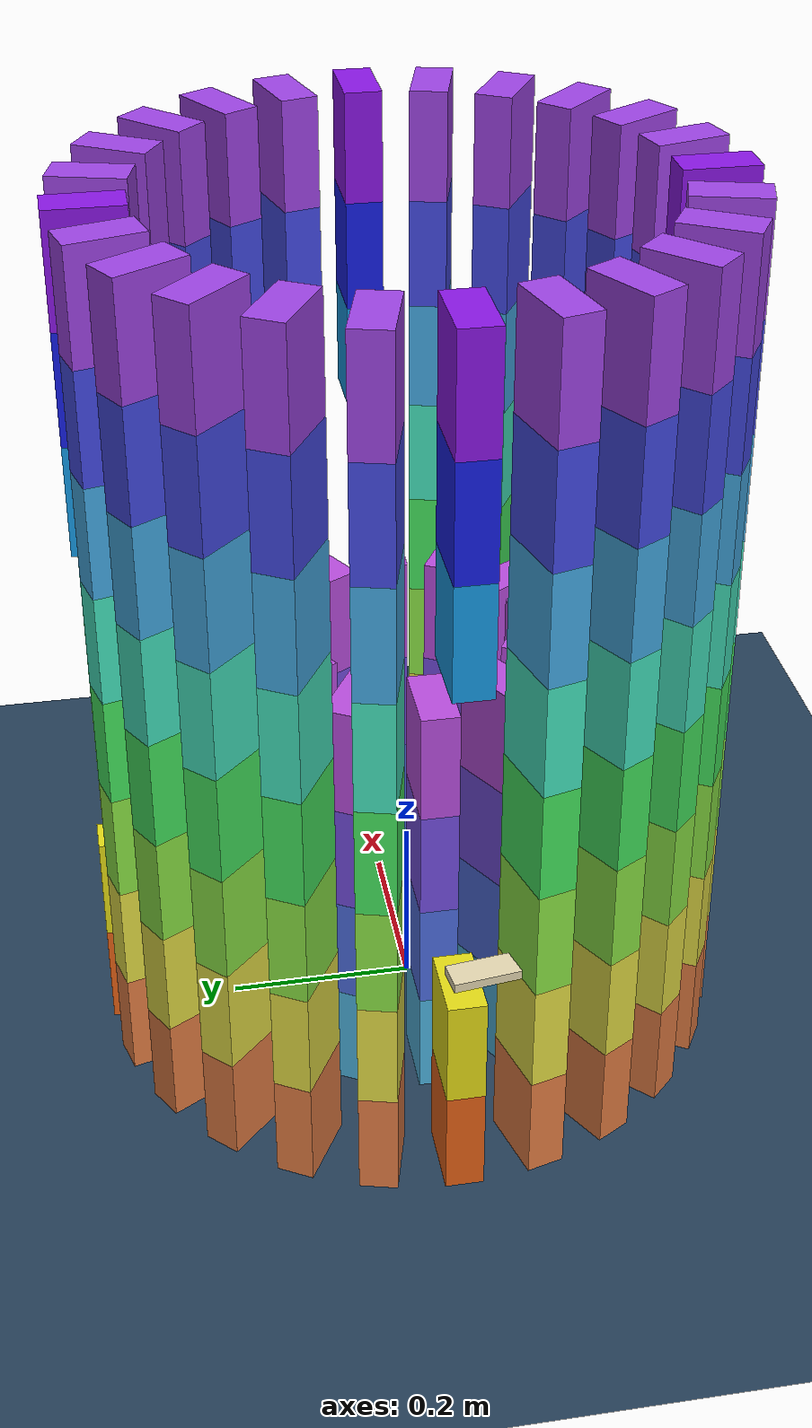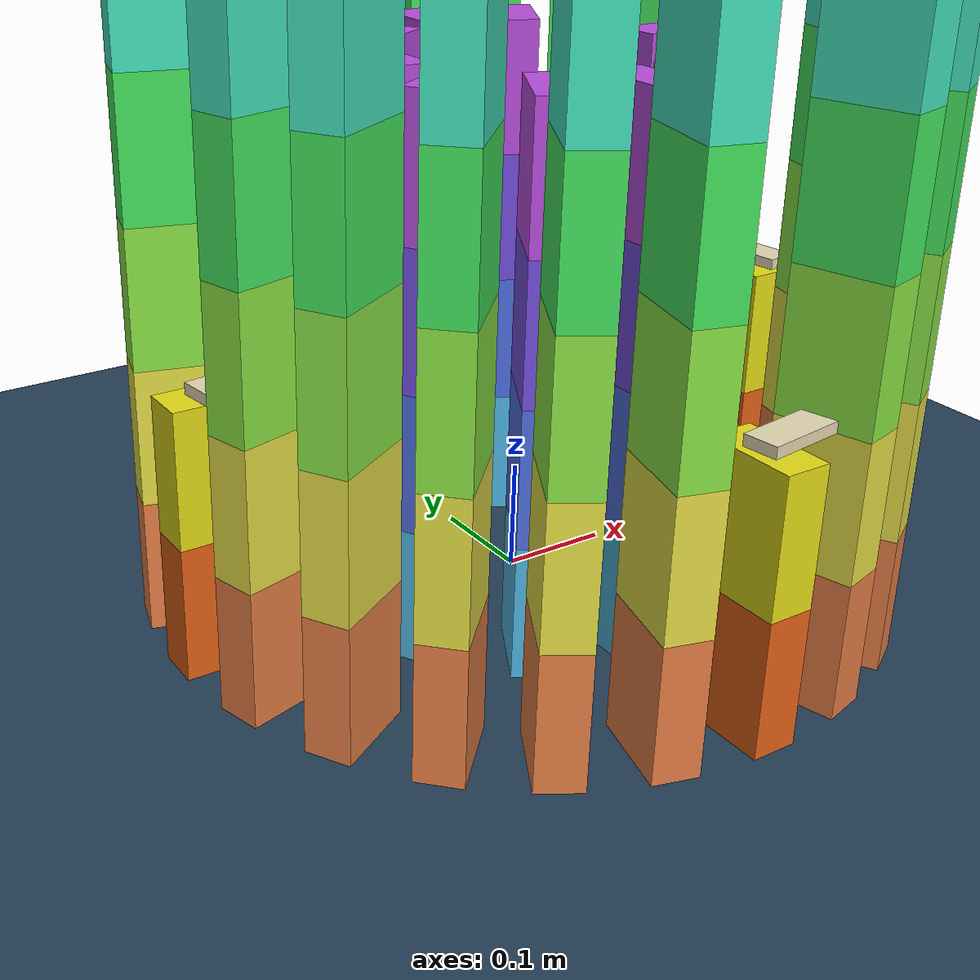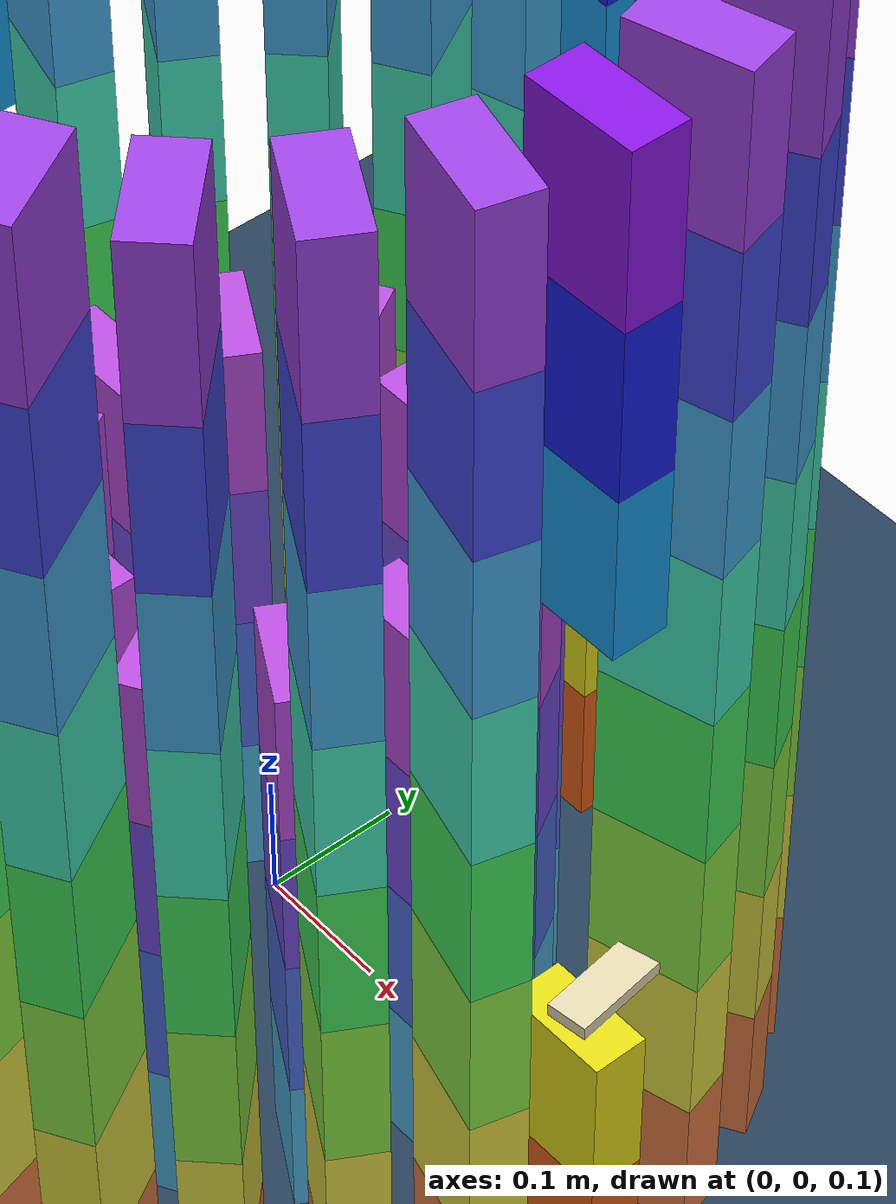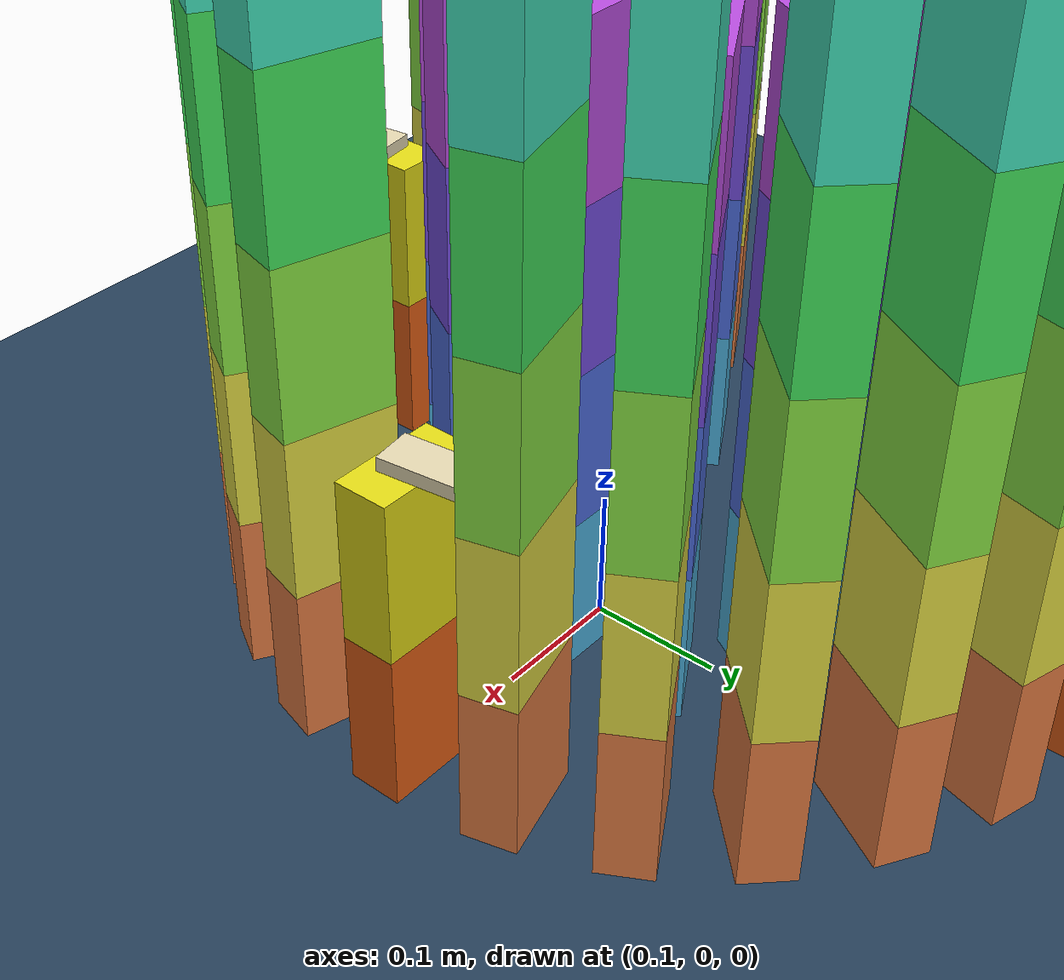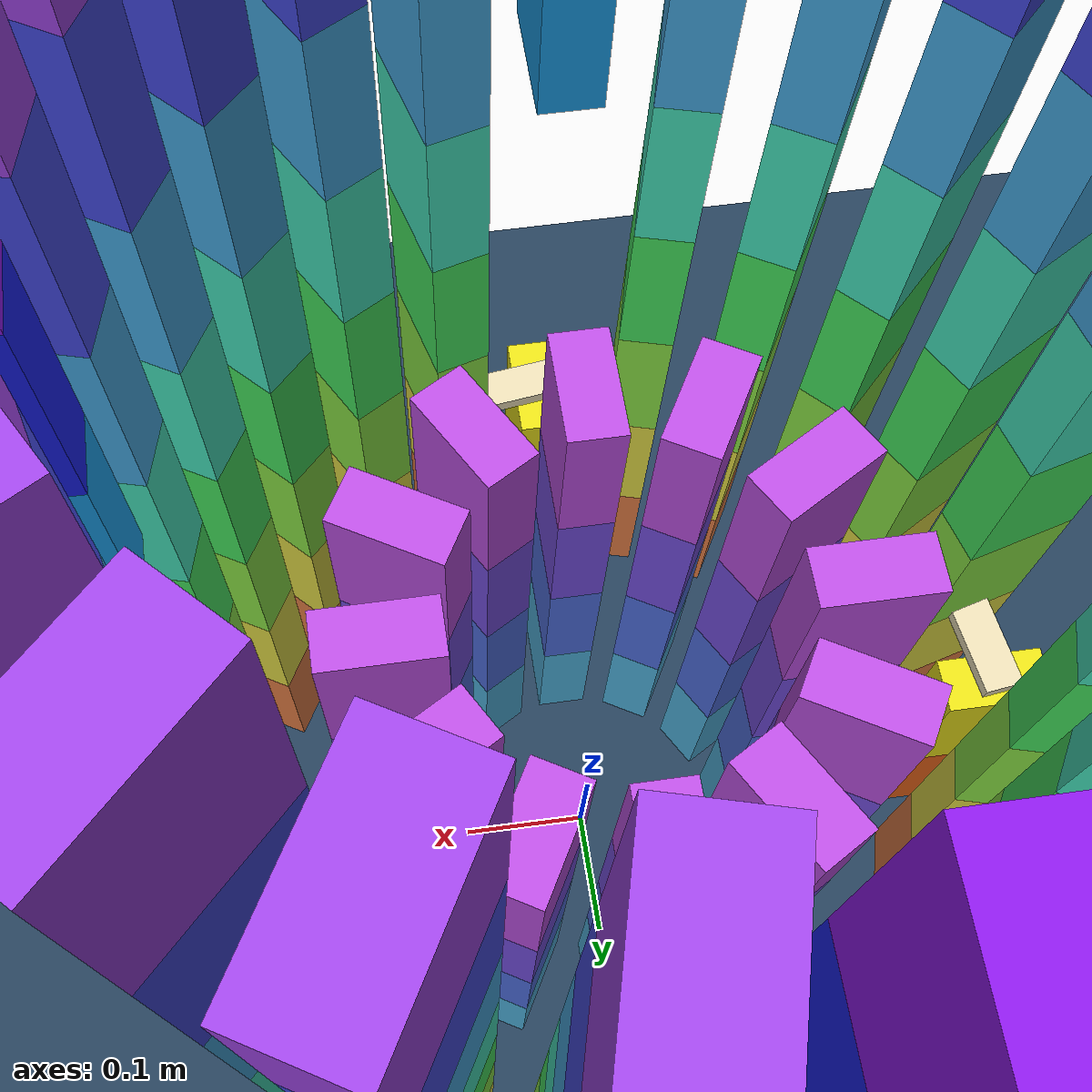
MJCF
<mujoco>
  <visual>
    <headlight diffuse="0.6 0.6 0.6" ambient="0.1 0.1 0.1" specular="0 0 0"/>
    <rgba haze="0.15 0.25 0.35 1"/>
    <global azimuth="120" elevation="-20"/>
  </visual>
  <asset>
    <texture type="skybox" builtin="gradient" rgb1="0.3 0.5 0.7" rgb2="0 0 0" width="512" height="3072"/>
    <texture type="2d" name="groundplane" builtin="checker" mark="edge" rgb1="0.2 0.3 0.4" rgb2="0.1 0.2 0.3" markrgb="0.8 0.8 0.8" width="300" height="300"/>
    <material name="groundplane" texture="groundplane" texuniform="true" texrepeat="5 5" reflectance="0.2"/>
  </asset>
  <worldbody>
    <light pos="0 0 1.5" dir="0 0 -1" directional="true"/>
    <geom name="floor" size="0 0 0.05" type="plane" material="groundplane"/>
    <body pos="0.3000 0.0000 0.0600" euler="0 0 90.0">
      <geom type="box" size="0.02 0.04 0.06" rgba="0.900 0.382 0.090 1"/>
      <freejoint/>
    </body>
    <body pos="0.2898 0.0776 0.0600" euler="0 0 105.0">
      <geom type="box" size="0.02 0.04 0.06" rgba="0.900 0.497 0.270 1"/>
      <freejoint/>
    </body>
    <body pos="0.2598 0.1500 0.0600" euler="0 0 120.0">
      <geom type="box" size="0.02 0.04 0.06" rgba="0.900 0.497 0.270 1"/>
      <freejoint/>
    </body>
    <body pos="0.2121 0.2121 0.0600" euler="0 0 135.0">
      <geom type="box" size="0.02 0.04 0.06" rgba="0.900 0.497 0.270 1"/>
      <freejoint/>
    </body>
    <body pos="0.1500 0.2598 0.0600" euler="0 0 150.0">
      <geom type="box" size="0.02 0.04 0.06" rgba="0.900 0.497 0.270 1"/>
      <freejoint/>
    </body>
    <body pos="0.0776 0.2898 0.0600" euler="0 0 165.0">
      <geom type="box" size="0.02 0.04 0.06" rgba="0.900 0.497 0.270 1"/>
      <freejoint/>
    </body>
    <body pos="0.0000 0.3000 0.0600" euler="0 0 180.0">
      <geom type="box" size="0.02 0.04 0.06" rgba="0.900 0.382 0.090 1"/>
      <freejoint/>
    </body>
    <body pos="-0.0776 0.2898 0.0600" euler="0 0 195.0">
      <geom type="box" size="0.02 0.04 0.06" rgba="0.900 0.497 0.270 1"/>
      <freejoint/>
    </body>
    <body pos="-0.1500 0.2598 0.0600" euler="0 0 210.0">
      <geom type="box" size="0.02 0.04 0.06" rgba="0.900 0.497 0.270 1"/>
      <freejoint/>
    </body>
    <body pos="-0.2121 0.2121 0.0600" euler="0 0 225.0">
      <geom type="box" size="0.02 0.04 0.06" rgba="0.900 0.497 0.270 1"/>
      <freejoint/>
    </body>
    <body pos="-0.2598 0.1500 0.0600" euler="0 0 240.0">
      <geom type="box" size="0.02 0.04 0.06" rgba="0.900 0.497 0.270 1"/>
      <freejoint/>
    </body>
    <body pos="-0.2898 0.0776 0.0600" euler="0 0 255.0">
      <geom type="box" size="0.02 0.04 0.06" rgba="0.900 0.497 0.270 1"/>
      <freejoint/>
    </body>
    <body pos="-0.3000 0.0000 0.0600" euler="0 0 270.0">
      <geom type="box" size="0.02 0.04 0.06" rgba="0.900 0.382 0.090 1"/>
      <freejoint/>
    </body>
    <body pos="-0.2898 -0.0776 0.0600" euler="0 0 285.0">
      <geom type="box" size="0.02 0.04 0.06" rgba="0.900 0.497 0.270 1"/>
      <freejoint/>
    </body>
    <body pos="-0.2598 -0.1500 0.0600" euler="0 0 300.0">
      <geom type="box" size="0.02 0.04 0.06" rgba="0.900 0.497 0.270 1"/>
      <freejoint/>
    </body>
    <body pos="-0.2121 -0.2121 0.0600" euler="0 0 315.0">
      <geom type="box" size="0.02 0.04 0.06" rgba="0.900 0.497 0.270 1"/>
      <freejoint/>
    </body>
    <body pos="-0.1500 -0.2598 0.0600" euler="0 0 330.0">
      <geom type="box" size="0.02 0.04 0.06" rgba="0.900 0.497 0.270 1"/>
      <freejoint/>
    </body>
    <body pos="-0.0776 -0.2898 0.0600" euler="0 0 345.0">
      <geom type="box" size="0.02 0.04 0.06" rgba="0.900 0.497 0.270 1"/>
      <freejoint/>
    </body>
    <body pos="-0.0000 -0.3000 0.0600" euler="0 0 360.0">
      <geom type="box" size="0.02 0.04 0.06" rgba="0.900 0.382 0.090 1"/>
      <freejoint/>
    </body>
    <body pos="0.0776 -0.2898 0.0600" euler="0 0 375.0">
      <geom type="box" size="0.02 0.04 0.06" rgba="0.900 0.497 0.270 1"/>
      <freejoint/>
    </body>
    <body pos="0.1500 -0.2598 0.0600" euler="0 0 390.0">
      <geom type="box" size="0.02 0.04 0.06" rgba="0.900 0.497 0.270 1"/>
      <freejoint/>
    </body>
    <body pos="0.2121 -0.2121 0.0600" euler="0 0 405.0">
      <geom type="box" size="0.02 0.04 0.06" rgba="0.900 0.497 0.270 1"/>
      <freejoint/>
    </body>
    <body pos="0.2598 -0.1500 0.0600" euler="0 0 420.0">
      <geom type="box" size="0.02 0.04 0.06" rgba="0.900 0.497 0.270 1"/>
      <freejoint/>
    </body>
    <body pos="0.2898 -0.0776 0.0600" euler="0 0 435.0">
      <geom type="box" size="0.02 0.04 0.06" rgba="0.900 0.497 0.270 1"/>
      <freejoint/>
    </body>
    <body pos="0.3000 0.0000 0.1800" euler="0 0 90.0">
      <geom type="box" size="0.02 0.04 0.06" rgba="0.900 0.868 0.090 1"/>
      <freejoint/>
    </body>
    <body pos="0.2898 0.0776 0.1800" euler="0 0 105.0">
      <geom type="box" size="0.02 0.04 0.06" rgba="0.900 0.875 0.270 1"/>
      <freejoint/>
    </body>
    <body pos="0.2598 0.1500 0.1800" euler="0 0 120.0">
      <geom type="box" size="0.02 0.04 0.06" rgba="0.900 0.875 0.270 1"/>
      <freejoint/>
    </body>
    <body pos="0.2121 0.2121 0.1800" euler="0 0 135.0">
      <geom type="box" size="0.02 0.04 0.06" rgba="0.900 0.875 0.270 1"/>
      <freejoint/>
    </body>
    <body pos="0.1500 0.2598 0.1800" euler="0 0 150.0">
      <geom type="box" size="0.02 0.04 0.06" rgba="0.900 0.875 0.270 1"/>
      <freejoint/>
    </body>
    <body pos="0.0776 0.2898 0.1800" euler="0 0 165.0">
      <geom type="box" size="0.02 0.04 0.06" rgba="0.900 0.875 0.270 1"/>
      <freejoint/>
    </body>
    <body pos="0.0000 0.3000 0.1800" euler="0 0 180.0">
      <geom type="box" size="0.02 0.04 0.06" rgba="0.900 0.868 0.090 1"/>
      <freejoint/>
    </body>
    <body pos="-0.0776 0.2898 0.1800" euler="0 0 195.0">
      <geom type="box" size="0.02 0.04 0.06" rgba="0.900 0.875 0.270 1"/>
      <freejoint/>
    </body>
    <body pos="-0.1500 0.2598 0.1800" euler="0 0 210.0">
      <geom type="box" size="0.02 0.04 0.06" rgba="0.900 0.875 0.270 1"/>
      <freejoint/>
    </body>
    <body pos="-0.2121 0.2121 0.1800" euler="0 0 225.0">
      <geom type="box" size="0.02 0.04 0.06" rgba="0.900 0.875 0.270 1"/>
      <freejoint/>
    </body>
    <body pos="-0.2598 0.1500 0.1800" euler="0 0 240.0">
      <geom type="box" size="0.02 0.04 0.06" rgba="0.900 0.875 0.270 1"/>
      <freejoint/>
    </body>
    <body pos="-0.2898 0.0776 0.1800" euler="0 0 255.0">
      <geom type="box" size="0.02 0.04 0.06" rgba="0.900 0.875 0.270 1"/>
      <freejoint/>
    </body>
    <body pos="-0.3000 0.0000 0.1800" euler="0 0 270.0">
      <geom type="box" size="0.02 0.04 0.06" rgba="0.900 0.868 0.090 1"/>
      <freejoint/>
    </body>
    <body pos="-0.2898 -0.0776 0.1800" euler="0 0 285.0">
      <geom type="box" size="0.02 0.04 0.06" rgba="0.900 0.875 0.270 1"/>
      <freejoint/>
    </body>
    <body pos="-0.2598 -0.1500 0.1800" euler="0 0 300.0">
      <geom type="box" size="0.02 0.04 0.06" rgba="0.900 0.875 0.270 1"/>
      <freejoint/>
    </body>
    <body pos="-0.2121 -0.2121 0.1800" euler="0 0 315.0">
      <geom type="box" size="0.02 0.04 0.06" rgba="0.900 0.875 0.270 1"/>
      <freejoint/>
    </body>
    <body pos="-0.1500 -0.2598 0.1800" euler="0 0 330.0">
      <geom type="box" size="0.02 0.04 0.06" rgba="0.900 0.875 0.270 1"/>
      <freejoint/>
    </body>
    <body pos="-0.0776 -0.2898 0.1800" euler="0 0 345.0">
      <geom type="box" size="0.02 0.04 0.06" rgba="0.900 0.875 0.270 1"/>
      <freejoint/>
    </body>
    <body pos="-0.0000 -0.3000 0.1800" euler="0 0 360.0">
      <geom type="box" size="0.02 0.04 0.06" rgba="0.900 0.868 0.090 1"/>
      <freejoint/>
    </body>
    <body pos="0.0776 -0.2898 0.1800" euler="0 0 375.0">
      <geom type="box" size="0.02 0.04 0.06" rgba="0.900 0.875 0.270 1"/>
      <freejoint/>
    </body>
    <body pos="0.1500 -0.2598 0.1800" euler="0 0 390.0">
      <geom type="box" size="0.02 0.04 0.06" rgba="0.900 0.875 0.270 1"/>
      <freejoint/>
    </body>
    <body pos="0.2121 -0.2121 0.1800" euler="0 0 405.0">
      <geom type="box" size="0.02 0.04 0.06" rgba="0.900 0.875 0.270 1"/>
      <freejoint/>
    </body>
    <body pos="0.2598 -0.1500 0.1800" euler="0 0 420.0">
      <geom type="box" size="0.02 0.04 0.06" rgba="0.900 0.875 0.270 1"/>
      <freejoint/>
    </body>
    <body pos="0.2898 -0.0776 0.1800" euler="0 0 435.0">
      <geom type="box" size="0.02 0.04 0.06" rgba="0.900 0.875 0.270 1"/>
      <freejoint/>
    </body>
    <body pos="0.2949 0.0388 0.2450" euler="0 0 97.5">
      <geom type="box" size="0.05 0.015 0.005" rgba="0.9 0.85 0.7 1"/>
      <freejoint/>
    </body>
    <body pos="0.0388 -0.2949 0.2450" euler="0 0 7.5">
      <geom type="box" size="0.05 0.015 0.005" rgba="0.9 0.85 0.7 1"/>
      <freejoint/>
    </body>
    <body pos="-0.2949 -0.0388 0.2450" euler="0 0 -82.5">
      <geom type="box" size="0.05 0.015 0.005" rgba="0.9 0.85 0.7 1"/>
      <freejoint/>
    </body>
    <body pos="-0.0388 0.2949 0.2450" euler="0 0 -172.5">
      <geom type="box" size="0.05 0.015 0.005" rgba="0.9 0.85 0.7 1"/>
      <freejoint/>
    </body>
    <body pos="0.2898 0.0776 0.3000" euler="0 0 105.0">
      <geom type="box" size="0.02 0.04 0.06" rgba="0.547 0.900 0.270 1"/>
      <freejoint/>
    </body>
    <body pos="0.2598 0.1500 0.3000" euler="0 0 120.0">
      <geom type="box" size="0.02 0.04 0.06" rgba="0.547 0.900 0.270 1"/>
      <freejoint/>
    </body>
    <body pos="0.2121 0.2121 0.3000" euler="0 0 135.0">
      <geom type="box" size="0.02 0.04 0.06" rgba="0.547 0.900 0.270 1"/>
      <freejoint/>
    </body>
    <body pos="0.1500 0.2598 0.3000" euler="0 0 150.0">
      <geom type="box" size="0.02 0.04 0.06" rgba="0.547 0.900 0.270 1"/>
      <freejoint/>
    </body>
    <body pos="0.0776 0.2898 0.3000" euler="0 0 165.0">
      <geom type="box" size="0.02 0.04 0.06" rgba="0.547 0.900 0.270 1"/>
      <freejoint/>
    </body>
    <body pos="-0.0776 0.2898 0.3000" euler="0 0 195.0">
      <geom type="box" size="0.02 0.04 0.06" rgba="0.547 0.900 0.270 1"/>
      <freejoint/>
    </body>
    <body pos="-0.1500 0.2598 0.3000" euler="0 0 210.0">
      <geom type="box" size="0.02 0.04 0.06" rgba="0.547 0.900 0.270 1"/>
      <freejoint/>
    </body>
    <body pos="-0.2121 0.2121 0.3000" euler="0 0 225.0">
      <geom type="box" size="0.02 0.04 0.06" rgba="0.547 0.900 0.270 1"/>
      <freejoint/>
    </body>
    <body pos="-0.2598 0.1500 0.3000" euler="0 0 240.0">
      <geom type="box" size="0.02 0.04 0.06" rgba="0.547 0.900 0.270 1"/>
      <freejoint/>
    </body>
    <body pos="-0.2898 0.0776 0.3000" euler="0 0 255.0">
      <geom type="box" size="0.02 0.04 0.06" rgba="0.547 0.900 0.270 1"/>
      <freejoint/>
    </body>
    <body pos="-0.2898 -0.0776 0.3000" euler="0 0 285.0">
      <geom type="box" size="0.02 0.04 0.06" rgba="0.547 0.900 0.270 1"/>
      <freejoint/>
    </body>
    <body pos="-0.2598 -0.1500 0.3000" euler="0 0 300.0">
      <geom type="box" size="0.02 0.04 0.06" rgba="0.547 0.900 0.270 1"/>
      <freejoint/>
    </body>
    <body pos="-0.2121 -0.2121 0.3000" euler="0 0 315.0">
      <geom type="box" size="0.02 0.04 0.06" rgba="0.547 0.900 0.270 1"/>
      <freejoint/>
    </body>
    <body pos="-0.1500 -0.2598 0.3000" euler="0 0 330.0">
      <geom type="box" size="0.02 0.04 0.06" rgba="0.547 0.900 0.270 1"/>
      <freejoint/>
    </body>
    <body pos="-0.0776 -0.2898 0.3000" euler="0 0 345.0">
      <geom type="box" size="0.02 0.04 0.06" rgba="0.547 0.900 0.270 1"/>
      <freejoint/>
    </body>
    <body pos="0.0776 -0.2898 0.3000" euler="0 0 375.0">
      <geom type="box" size="0.02 0.04 0.06" rgba="0.547 0.900 0.270 1"/>
      <freejoint/>
    </body>
    <body pos="0.1500 -0.2598 0.3000" euler="0 0 390.0">
      <geom type="box" size="0.02 0.04 0.06" rgba="0.547 0.900 0.270 1"/>
      <freejoint/>
    </body>
    <body pos="0.2121 -0.2121 0.3000" euler="0 0 405.0">
      <geom type="box" size="0.02 0.04 0.06" rgba="0.547 0.900 0.270 1"/>
      <freejoint/>
    </body>
    <body pos="0.2598 -0.1500 0.3000" euler="0 0 420.0">
      <geom type="box" size="0.02 0.04 0.06" rgba="0.547 0.900 0.270 1"/>
      <freejoint/>
    </body>
    <body pos="0.2898 -0.0776 0.3000" euler="0 0 435.0">
      <geom type="box" size="0.02 0.04 0.06" rgba="0.547 0.900 0.270 1"/>
      <freejoint/>
    </body>
    <body pos="0.2898 0.0776 0.4200" euler="0 0 105.0">
      <geom type="box" size="0.02 0.04 0.06" rgba="0.270 0.900 0.371 1"/>
      <freejoint/>
    </body>
    <body pos="0.2598 0.1500 0.4200" euler="0 0 120.0">
      <geom type="box" size="0.02 0.04 0.06" rgba="0.270 0.900 0.371 1"/>
      <freejoint/>
    </body>
    <body pos="0.2121 0.2121 0.4200" euler="0 0 135.0">
      <geom type="box" size="0.02 0.04 0.06" rgba="0.270 0.900 0.371 1"/>
      <freejoint/>
    </body>
    <body pos="0.1500 0.2598 0.4200" euler="0 0 150.0">
      <geom type="box" size="0.02 0.04 0.06" rgba="0.270 0.900 0.371 1"/>
      <freejoint/>
    </body>
    <body pos="0.0776 0.2898 0.4200" euler="0 0 165.0">
      <geom type="box" size="0.02 0.04 0.06" rgba="0.270 0.900 0.371 1"/>
      <freejoint/>
    </body>
    <body pos="-0.0776 0.2898 0.4200" euler="0 0 195.0">
      <geom type="box" size="0.02 0.04 0.06" rgba="0.270 0.900 0.371 1"/>
      <freejoint/>
    </body>
    <body pos="-0.1500 0.2598 0.4200" euler="0 0 210.0">
      <geom type="box" size="0.02 0.04 0.06" rgba="0.270 0.900 0.371 1"/>
      <freejoint/>
    </body>
    <body pos="-0.2121 0.2121 0.4200" euler="0 0 225.0">
      <geom type="box" size="0.02 0.04 0.06" rgba="0.270 0.900 0.371 1"/>
      <freejoint/>
    </body>
    <body pos="-0.2598 0.1500 0.4200" euler="0 0 240.0">
      <geom type="box" size="0.02 0.04 0.06" rgba="0.270 0.900 0.371 1"/>
      <freejoint/>
    </body>
    <body pos="-0.2898 0.0776 0.4200" euler="0 0 255.0">
      <geom type="box" size="0.02 0.04 0.06" rgba="0.270 0.900 0.371 1"/>
      <freejoint/>
    </body>
    <body pos="-0.2898 -0.0776 0.4200" euler="0 0 285.0">
      <geom type="box" size="0.02 0.04 0.06" rgba="0.270 0.900 0.371 1"/>
      <freejoint/>
    </body>
    <body pos="-0.2598 -0.1500 0.4200" euler="0 0 300.0">
      <geom type="box" size="0.02 0.04 0.06" rgba="0.270 0.900 0.371 1"/>
      <freejoint/>
    </body>
    <body pos="-0.2121 -0.2121 0.4200" euler="0 0 315.0">
      <geom type="box" size="0.02 0.04 0.06" rgba="0.270 0.900 0.371 1"/>
      <freejoint/>
    </body>
    <body pos="-0.1500 -0.2598 0.4200" euler="0 0 330.0">
      <geom type="box" size="0.02 0.04 0.06" rgba="0.270 0.900 0.371 1"/>
      <freejoint/>
    </body>
    <body pos="-0.0776 -0.2898 0.4200" euler="0 0 345.0">
      <geom type="box" size="0.02 0.04 0.06" rgba="0.270 0.900 0.371 1"/>
      <freejoint/>
    </body>
    <body pos="0.0776 -0.2898 0.4200" euler="0 0 375.0">
      <geom type="box" size="0.02 0.04 0.06" rgba="0.270 0.900 0.371 1"/>
      <freejoint/>
    </body>
    <body pos="0.1500 -0.2598 0.4200" euler="0 0 390.0">
      <geom type="box" size="0.02 0.04 0.06" rgba="0.270 0.900 0.371 1"/>
      <freejoint/>
    </body>
    <body pos="0.2121 -0.2121 0.4200" euler="0 0 405.0">
      <geom type="box" size="0.02 0.04 0.06" rgba="0.270 0.900 0.371 1"/>
      <freejoint/>
    </body>
    <body pos="0.2598 -0.1500 0.4200" euler="0 0 420.0">
      <geom type="box" size="0.02 0.04 0.06" rgba="0.270 0.900 0.371 1"/>
      <freejoint/>
    </body>
    <body pos="0.2898 -0.0776 0.4200" euler="0 0 435.0">
      <geom type="box" size="0.02 0.04 0.06" rgba="0.270 0.900 0.371 1"/>
      <freejoint/>
    </body>
    <body pos="0.2898 0.0776 0.5400" euler="0 0 105.0">
      <geom type="box" size="0.02 0.04 0.06" rgba="0.270 0.900 0.749 1"/>
      <freejoint/>
    </body>
    <body pos="0.2598 0.1500 0.5400" euler="0 0 120.0">
      <geom type="box" size="0.02 0.04 0.06" rgba="0.270 0.900 0.749 1"/>
      <freejoint/>
    </body>
    <body pos="0.2121 0.2121 0.5400" euler="0 0 135.0">
      <geom type="box" size="0.02 0.04 0.06" rgba="0.270 0.900 0.749 1"/>
      <freejoint/>
    </body>
    <body pos="0.1500 0.2598 0.5400" euler="0 0 150.0">
      <geom type="box" size="0.02 0.04 0.06" rgba="0.270 0.900 0.749 1"/>
      <freejoint/>
    </body>
    <body pos="0.0776 0.2898 0.5400" euler="0 0 165.0">
      <geom type="box" size="0.02 0.04 0.06" rgba="0.270 0.900 0.749 1"/>
      <freejoint/>
    </body>
    <body pos="-0.0776 0.2898 0.5400" euler="0 0 195.0">
      <geom type="box" size="0.02 0.04 0.06" rgba="0.270 0.900 0.749 1"/>
      <freejoint/>
    </body>
    <body pos="-0.1500 0.2598 0.5400" euler="0 0 210.0">
      <geom type="box" size="0.02 0.04 0.06" rgba="0.270 0.900 0.749 1"/>
      <freejoint/>
    </body>
    <body pos="-0.2121 0.2121 0.5400" euler="0 0 225.0">
      <geom type="box" size="0.02 0.04 0.06" rgba="0.270 0.900 0.749 1"/>
      <freejoint/>
    </body>
    <body pos="-0.2598 0.1500 0.5400" euler="0 0 240.0">
      <geom type="box" size="0.02 0.04 0.06" rgba="0.270 0.900 0.749 1"/>
      <freejoint/>
    </body>
    <body pos="-0.2898 0.0776 0.5400" euler="0 0 255.0">
      <geom type="box" size="0.02 0.04 0.06" rgba="0.270 0.900 0.749 1"/>
      <freejoint/>
    </body>
    <body pos="-0.2898 -0.0776 0.5400" euler="0 0 285.0">
      <geom type="box" size="0.02 0.04 0.06" rgba="0.270 0.900 0.749 1"/>
      <freejoint/>
    </body>
    <body pos="-0.2598 -0.1500 0.5400" euler="0 0 300.0">
      <geom type="box" size="0.02 0.04 0.06" rgba="0.270 0.900 0.749 1"/>
      <freejoint/>
    </body>
    <body pos="-0.2121 -0.2121 0.5400" euler="0 0 315.0">
      <geom type="box" size="0.02 0.04 0.06" rgba="0.270 0.900 0.749 1"/>
      <freejoint/>
    </body>
    <body pos="-0.1500 -0.2598 0.5400" euler="0 0 330.0">
      <geom type="box" size="0.02 0.04 0.06" rgba="0.270 0.900 0.749 1"/>
      <freejoint/>
    </body>
    <body pos="-0.0776 -0.2898 0.5400" euler="0 0 345.0">
      <geom type="box" size="0.02 0.04 0.06" rgba="0.270 0.900 0.749 1"/>
      <freejoint/>
    </body>
    <body pos="0.0776 -0.2898 0.5400" euler="0 0 375.0">
      <geom type="box" size="0.02 0.04 0.06" rgba="0.270 0.900 0.749 1"/>
      <freejoint/>
    </body>
    <body pos="0.1500 -0.2598 0.5400" euler="0 0 390.0">
      <geom type="box" size="0.02 0.04 0.06" rgba="0.270 0.900 0.749 1"/>
      <freejoint/>
    </body>
    <body pos="0.2121 -0.2121 0.5400" euler="0 0 405.0">
      <geom type="box" size="0.02 0.04 0.06" rgba="0.270 0.900 0.749 1"/>
      <freejoint/>
    </body>
    <body pos="0.2598 -0.1500 0.5400" euler="0 0 420.0">
      <geom type="box" size="0.02 0.04 0.06" rgba="0.270 0.900 0.749 1"/>
      <freejoint/>
    </body>
    <body pos="0.2898 -0.0776 0.5400" euler="0 0 435.0">
      <geom type="box" size="0.02 0.04 0.06" rgba="0.270 0.900 0.749 1"/>
      <freejoint/>
    </body>
    <body pos="0.3000 0.0000 0.6600" euler="0 0 90.0">
      <geom type="box" size="0.02 0.04 0.06" rgba="0.090 0.608 0.900 1"/>
      <freejoint/>
    </body>
    <body pos="0.2898 0.0776 0.6600" euler="0 0 105.0">
      <geom type="box" size="0.02 0.04 0.06" rgba="0.270 0.673 0.900 1"/>
      <freejoint/>
    </body>
    <body pos="0.2598 0.1500 0.6600" euler="0 0 120.0">
      <geom type="box" size="0.02 0.04 0.06" rgba="0.270 0.673 0.900 1"/>
      <freejoint/>
    </body>
    <body pos="0.2121 0.2121 0.6600" euler="0 0 135.0">
      <geom type="box" size="0.02 0.04 0.06" rgba="0.270 0.673 0.900 1"/>
      <freejoint/>
    </body>
    <body pos="0.1500 0.2598 0.6600" euler="0 0 150.0">
      <geom type="box" size="0.02 0.04 0.06" rgba="0.270 0.673 0.900 1"/>
      <freejoint/>
    </body>
    <body pos="0.0776 0.2898 0.6600" euler="0 0 165.0">
      <geom type="box" size="0.02 0.04 0.06" rgba="0.270 0.673 0.900 1"/>
      <freejoint/>
    </body>
    <body pos="0.0000 0.3000 0.6600" euler="0 0 180.0">
      <geom type="box" size="0.02 0.04 0.06" rgba="0.090 0.608 0.900 1"/>
      <freejoint/>
    </body>
    <body pos="-0.0776 0.2898 0.6600" euler="0 0 195.0">
      <geom type="box" size="0.02 0.04 0.06" rgba="0.270 0.673 0.900 1"/>
      <freejoint/>
    </body>
    <body pos="-0.1500 0.2598 0.6600" euler="0 0 210.0">
      <geom type="box" size="0.02 0.04 0.06" rgba="0.270 0.673 0.900 1"/>
      <freejoint/>
    </body>
    <body pos="-0.2121 0.2121 0.6600" euler="0 0 225.0">
      <geom type="box" size="0.02 0.04 0.06" rgba="0.270 0.673 0.900 1"/>
      <freejoint/>
    </body>
    <body pos="-0.2598 0.1500 0.6600" euler="0 0 240.0">
      <geom type="box" size="0.02 0.04 0.06" rgba="0.270 0.673 0.900 1"/>
      <freejoint/>
    </body>
    <body pos="-0.2898 0.0776 0.6600" euler="0 0 255.0">
      <geom type="box" size="0.02 0.04 0.06" rgba="0.270 0.673 0.900 1"/>
      <freejoint/>
    </body>
    <body pos="-0.3000 0.0000 0.6600" euler="0 0 270.0">
      <geom type="box" size="0.02 0.04 0.06" rgba="0.090 0.608 0.900 1"/>
      <freejoint/>
    </body>
    <body pos="-0.2898 -0.0776 0.6600" euler="0 0 285.0">
      <geom type="box" size="0.02 0.04 0.06" rgba="0.270 0.673 0.900 1"/>
      <freejoint/>
    </body>
    <body pos="-0.2598 -0.1500 0.6600" euler="0 0 300.0">
      <geom type="box" size="0.02 0.04 0.06" rgba="0.270 0.673 0.900 1"/>
      <freejoint/>
    </body>
    <body pos="-0.2121 -0.2121 0.6600" euler="0 0 315.0">
      <geom type="box" size="0.02 0.04 0.06" rgba="0.270 0.673 0.900 1"/>
      <freejoint/>
    </body>
    <body pos="-0.1500 -0.2598 0.6600" euler="0 0 330.0">
      <geom type="box" size="0.02 0.04 0.06" rgba="0.270 0.673 0.900 1"/>
      <freejoint/>
    </body>
    <body pos="-0.0776 -0.2898 0.6600" euler="0 0 345.0">
      <geom type="box" size="0.02 0.04 0.06" rgba="0.270 0.673 0.900 1"/>
      <freejoint/>
    </body>
    <body pos="-0.0000 -0.3000 0.6600" euler="0 0 360.0">
      <geom type="box" size="0.02 0.04 0.06" rgba="0.090 0.608 0.900 1"/>
      <freejoint/>
    </body>
    <body pos="0.0776 -0.2898 0.6600" euler="0 0 375.0">
      <geom type="box" size="0.02 0.04 0.06" rgba="0.270 0.673 0.900 1"/>
      <freejoint/>
    </body>
    <body pos="0.1500 -0.2598 0.6600" euler="0 0 390.0">
      <geom type="box" size="0.02 0.04 0.06" rgba="0.270 0.673 0.900 1"/>
      <freejoint/>
    </body>
    <body pos="0.2121 -0.2121 0.6600" euler="0 0 405.0">
      <geom type="box" size="0.02 0.04 0.06" rgba="0.270 0.673 0.900 1"/>
      <freejoint/>
    </body>
    <body pos="0.2598 -0.1500 0.6600" euler="0 0 420.0">
      <geom type="box" size="0.02 0.04 0.06" rgba="0.270 0.673 0.900 1"/>
      <freejoint/>
    </body>
    <body pos="0.2898 -0.0776 0.6600" euler="0 0 435.0">
      <geom type="box" size="0.02 0.04 0.06" rgba="0.270 0.673 0.900 1"/>
      <freejoint/>
    </body>
    <body pos="0.3000 0.0000 0.7800" euler="0 0 90.0">
      <geom type="box" size="0.02 0.04 0.06" rgba="0.090 0.122 0.900 1"/>
      <freejoint/>
    </body>
    <body pos="0.2898 0.0776 0.7800" euler="0 0 105.0">
      <geom type="box" size="0.02 0.04 0.06" rgba="0.270 0.295 0.900 1"/>
      <freejoint/>
    </body>
    <body pos="0.2598 0.1500 0.7800" euler="0 0 120.0">
      <geom type="box" size="0.02 0.04 0.06" rgba="0.270 0.295 0.900 1"/>
      <freejoint/>
    </body>
    <body pos="0.2121 0.2121 0.7800" euler="0 0 135.0">
      <geom type="box" size="0.02 0.04 0.06" rgba="0.270 0.295 0.900 1"/>
      <freejoint/>
    </body>
    <body pos="0.1500 0.2598 0.7800" euler="0 0 150.0">
      <geom type="box" size="0.02 0.04 0.06" rgba="0.270 0.295 0.900 1"/>
      <freejoint/>
    </body>
    <body pos="0.0776 0.2898 0.7800" euler="0 0 165.0">
      <geom type="box" size="0.02 0.04 0.06" rgba="0.270 0.295 0.900 1"/>
      <freejoint/>
    </body>
    <body pos="0.0000 0.3000 0.7800" euler="0 0 180.0">
      <geom type="box" size="0.02 0.04 0.06" rgba="0.090 0.122 0.900 1"/>
      <freejoint/>
    </body>
    <body pos="-0.0776 0.2898 0.7800" euler="0 0 195.0">
      <geom type="box" size="0.02 0.04 0.06" rgba="0.270 0.295 0.900 1"/>
      <freejoint/>
    </body>
    <body pos="-0.1500 0.2598 0.7800" euler="0 0 210.0">
      <geom type="box" size="0.02 0.04 0.06" rgba="0.270 0.295 0.900 1"/>
      <freejoint/>
    </body>
    <body pos="-0.2121 0.2121 0.7800" euler="0 0 225.0">
      <geom type="box" size="0.02 0.04 0.06" rgba="0.270 0.295 0.900 1"/>
      <freejoint/>
    </body>
    <body pos="-0.2598 0.1500 0.7800" euler="0 0 240.0">
      <geom type="box" size="0.02 0.04 0.06" rgba="0.270 0.295 0.900 1"/>
      <freejoint/>
    </body>
    <body pos="-0.2898 0.0776 0.7800" euler="0 0 255.0">
      <geom type="box" size="0.02 0.04 0.06" rgba="0.270 0.295 0.900 1"/>
      <freejoint/>
    </body>
    <body pos="-0.3000 0.0000 0.7800" euler="0 0 270.0">
      <geom type="box" size="0.02 0.04 0.06" rgba="0.090 0.122 0.900 1"/>
      <freejoint/>
    </body>
    <body pos="-0.2898 -0.0776 0.7800" euler="0 0 285.0">
      <geom type="box" size="0.02 0.04 0.06" rgba="0.270 0.295 0.900 1"/>
      <freejoint/>
    </body>
    <body pos="-0.2598 -0.1500 0.7800" euler="0 0 300.0">
      <geom type="box" size="0.02 0.04 0.06" rgba="0.270 0.295 0.900 1"/>
      <freejoint/>
    </body>
    <body pos="-0.2121 -0.2121 0.7800" euler="0 0 315.0">
      <geom type="box" size="0.02 0.04 0.06" rgba="0.270 0.295 0.900 1"/>
      <freejoint/>
    </body>
    <body pos="-0.1500 -0.2598 0.7800" euler="0 0 330.0">
      <geom type="box" size="0.02 0.04 0.06" rgba="0.270 0.295 0.900 1"/>
      <freejoint/>
    </body>
    <body pos="-0.0776 -0.2898 0.7800" euler="0 0 345.0">
      <geom type="box" size="0.02 0.04 0.06" rgba="0.270 0.295 0.900 1"/>
      <freejoint/>
    </body>
    <body pos="-0.0000 -0.3000 0.7800" euler="0 0 360.0">
      <geom type="box" size="0.02 0.04 0.06" rgba="0.090 0.122 0.900 1"/>
      <freejoint/>
    </body>
    <body pos="0.0776 -0.2898 0.7800" euler="0 0 375.0">
      <geom type="box" size="0.02 0.04 0.06" rgba="0.270 0.295 0.900 1"/>
      <freejoint/>
    </body>
    <body pos="0.1500 -0.2598 0.7800" euler="0 0 390.0">
      <geom type="box" size="0.02 0.04 0.06" rgba="0.270 0.295 0.900 1"/>
      <freejoint/>
    </body>
    <body pos="0.2121 -0.2121 0.7800" euler="0 0 405.0">
      <geom type="box" size="0.02 0.04 0.06" rgba="0.270 0.295 0.900 1"/>
      <freejoint/>
    </body>
    <body pos="0.2598 -0.1500 0.7800" euler="0 0 420.0">
      <geom type="box" size="0.02 0.04 0.06" rgba="0.270 0.295 0.900 1"/>
      <freejoint/>
    </body>
    <body pos="0.2898 -0.0776 0.7800" euler="0 0 435.0">
      <geom type="box" size="0.02 0.04 0.06" rgba="0.270 0.295 0.900 1"/>
      <freejoint/>
    </body>
    <body pos="0.3000 0.0000 0.9000" euler="0 0 90.0">
      <geom type="box" size="0.02 0.04 0.06" rgba="0.544 0.090 0.900 1"/>
      <freejoint/>
    </body>
    <body pos="0.2898 0.0776 0.9000" euler="0 0 105.0">
      <geom type="box" size="0.02 0.04 0.06" rgba="0.623 0.270 0.900 1"/>
      <freejoint/>
    </body>
    <body pos="0.2598 0.1500 0.9000" euler="0 0 120.0">
      <geom type="box" size="0.02 0.04 0.06" rgba="0.623 0.270 0.900 1"/>
      <freejoint/>
    </body>
    <body pos="0.2121 0.2121 0.9000" euler="0 0 135.0">
      <geom type="box" size="0.02 0.04 0.06" rgba="0.623 0.270 0.900 1"/>
      <freejoint/>
    </body>
    <body pos="0.1500 0.2598 0.9000" euler="0 0 150.0">
      <geom type="box" size="0.02 0.04 0.06" rgba="0.623 0.270 0.900 1"/>
      <freejoint/>
    </body>
    <body pos="0.0776 0.2898 0.9000" euler="0 0 165.0">
      <geom type="box" size="0.02 0.04 0.06" rgba="0.623 0.270 0.900 1"/>
      <freejoint/>
    </body>
    <body pos="0.0000 0.3000 0.9000" euler="0 0 180.0">
      <geom type="box" size="0.02 0.04 0.06" rgba="0.544 0.090 0.900 1"/>
      <freejoint/>
    </body>
    <body pos="-0.0776 0.2898 0.9000" euler="0 0 195.0">
      <geom type="box" size="0.02 0.04 0.06" rgba="0.623 0.270 0.900 1"/>
      <freejoint/>
    </body>
    <body pos="-0.1500 0.2598 0.9000" euler="0 0 210.0">
      <geom type="box" size="0.02 0.04 0.06" rgba="0.623 0.270 0.900 1"/>
      <freejoint/>
    </body>
    <body pos="-0.2121 0.2121 0.9000" euler="0 0 225.0">
      <geom type="box" size="0.02 0.04 0.06" rgba="0.623 0.270 0.900 1"/>
      <freejoint/>
    </body>
    <body pos="-0.2598 0.1500 0.9000" euler="0 0 240.0">
      <geom type="box" size="0.02 0.04 0.06" rgba="0.623 0.270 0.900 1"/>
      <freejoint/>
    </body>
    <body pos="-0.2898 0.0776 0.9000" euler="0 0 255.0">
      <geom type="box" size="0.02 0.04 0.06" rgba="0.623 0.270 0.900 1"/>
      <freejoint/>
    </body>
    <body pos="-0.3000 0.0000 0.9000" euler="0 0 270.0">
      <geom type="box" size="0.02 0.04 0.06" rgba="0.544 0.090 0.900 1"/>
      <freejoint/>
    </body>
    <body pos="-0.2898 -0.0776 0.9000" euler="0 0 285.0">
      <geom type="box" size="0.02 0.04 0.06" rgba="0.623 0.270 0.900 1"/>
      <freejoint/>
    </body>
    <body pos="-0.2598 -0.1500 0.9000" euler="0 0 300.0">
      <geom type="box" size="0.02 0.04 0.06" rgba="0.623 0.270 0.900 1"/>
      <freejoint/>
    </body>
    <body pos="-0.2121 -0.2121 0.9000" euler="0 0 315.0">
      <geom type="box" size="0.02 0.04 0.06" rgba="0.623 0.270 0.900 1"/>
      <freejoint/>
    </body>
    <body pos="-0.1500 -0.2598 0.9000" euler="0 0 330.0">
      <geom type="box" size="0.02 0.04 0.06" rgba="0.623 0.270 0.900 1"/>
      <freejoint/>
    </body>
    <body pos="-0.0776 -0.2898 0.9000" euler="0 0 345.0">
      <geom type="box" size="0.02 0.04 0.06" rgba="0.623 0.270 0.900 1"/>
      <freejoint/>
    </body>
    <body pos="-0.0000 -0.3000 0.9000" euler="0 0 360.0">
      <geom type="box" size="0.02 0.04 0.06" rgba="0.544 0.090 0.900 1"/>
      <freejoint/>
    </body>
    <body pos="0.0776 -0.2898 0.9000" euler="0 0 375.0">
      <geom type="box" size="0.02 0.04 0.06" rgba="0.623 0.270 0.900 1"/>
      <freejoint/>
    </body>
    <body pos="0.1500 -0.2598 0.9000" euler="0 0 390.0">
      <geom type="box" size="0.02 0.04 0.06" rgba="0.623 0.270 0.900 1"/>
      <freejoint/>
    </body>
    <body pos="0.2121 -0.2121 0.9000" euler="0 0 405.0">
      <geom type="box" size="0.02 0.04 0.06" rgba="0.623 0.270 0.900 1"/>
      <freejoint/>
    </body>
    <body pos="0.2598 -0.1500 0.9000" euler="0 0 420.0">
      <geom type="box" size="0.02 0.04 0.06" rgba="0.623 0.270 0.900 1"/>
      <freejoint/>
    </body>
    <body pos="0.2898 -0.0776 0.9000" euler="0 0 435.0">
      <geom type="box" size="0.02 0.04 0.06" rgba="0.623 0.270 0.900 1"/>
      <freejoint/>
    </body>
    <body pos="0.1500 0.0000 0.0600" euler="0 0 90.0">
      <geom type="box" size="0.02 0.04 0.06" rgba="0.308 0.708 0.880 1"/>
      <freejoint/>
    </body>
    <body pos="0.1299 0.0750 0.0600" euler="0 0 120.0">
      <geom type="box" size="0.02 0.04 0.06" rgba="0.308 0.708 0.880 1"/>
      <freejoint/>
    </body>
    <body pos="0.0750 0.1299 0.0600" euler="0 0 150.0">
      <geom type="box" size="0.02 0.04 0.06" rgba="0.308 0.708 0.880 1"/>
      <freejoint/>
    </body>
    <body pos="0.0000 0.1500 0.0600" euler="0 0 180.0">
      <geom type="box" size="0.02 0.04 0.06" rgba="0.308 0.708 0.880 1"/>
      <freejoint/>
    </body>
    <body pos="-0.0750 0.1299 0.0600" euler="0 0 210.0">
      <geom type="box" size="0.02 0.04 0.06" rgba="0.308 0.708 0.880 1"/>
      <freejoint/>
    </body>
    <body pos="-0.1299 0.0750 0.0600" euler="0 0 240.0">
      <geom type="box" size="0.02 0.04 0.06" rgba="0.308 0.708 0.880 1"/>
      <freejoint/>
    </body>
    <body pos="-0.1500 0.0000 0.0600" euler="0 0 270.0">
      <geom type="box" size="0.02 0.04 0.06" rgba="0.308 0.708 0.880 1"/>
      <freejoint/>
    </body>
    <body pos="-0.1299 -0.0750 0.0600" euler="0 0 300.0">
      <geom type="box" size="0.02 0.04 0.06" rgba="0.308 0.708 0.880 1"/>
      <freejoint/>
    </body>
    <body pos="-0.0750 -0.1299 0.0600" euler="0 0 330.0">
      <geom type="box" size="0.02 0.04 0.06" rgba="0.308 0.708 0.880 1"/>
      <freejoint/>
    </body>
    <body pos="-0.0000 -0.1500 0.0600" euler="0 0 360.0">
      <geom type="box" size="0.02 0.04 0.06" rgba="0.308 0.708 0.880 1"/>
      <freejoint/>
    </body>
    <body pos="0.0750 -0.1299 0.0600" euler="0 0 390.0">
      <geom type="box" size="0.02 0.04 0.06" rgba="0.308 0.708 0.880 1"/>
      <freejoint/>
    </body>
    <body pos="0.1299 -0.0750 0.0600" euler="0 0 420.0">
      <geom type="box" size="0.02 0.04 0.06" rgba="0.308 0.708 0.880 1"/>
      <freejoint/>
    </body>
    <body pos="0.1500 0.0000 0.1800" euler="0 0 90.0">
      <geom type="box" size="0.02 0.04 0.06" rgba="0.308 0.434 0.880 1"/>
      <freejoint/>
    </body>
    <body pos="0.1299 0.0750 0.1800" euler="0 0 120.0">
      <geom type="box" size="0.02 0.04 0.06" rgba="0.308 0.434 0.880 1"/>
      <freejoint/>
    </body>
    <body pos="0.0750 0.1299 0.1800" euler="0 0 150.0">
      <geom type="box" size="0.02 0.04 0.06" rgba="0.308 0.434 0.880 1"/>
      <freejoint/>
    </body>
    <body pos="0.0000 0.1500 0.1800" euler="0 0 180.0">
      <geom type="box" size="0.02 0.04 0.06" rgba="0.308 0.434 0.880 1"/>
      <freejoint/>
    </body>
    <body pos="-0.0750 0.1299 0.1800" euler="0 0 210.0">
      <geom type="box" size="0.02 0.04 0.06" rgba="0.308 0.434 0.880 1"/>
      <freejoint/>
    </body>
    <body pos="-0.1299 0.0750 0.1800" euler="0 0 240.0">
      <geom type="box" size="0.02 0.04 0.06" rgba="0.308 0.434 0.880 1"/>
      <freejoint/>
    </body>
    <body pos="-0.1500 0.0000 0.1800" euler="0 0 270.0">
      <geom type="box" size="0.02 0.04 0.06" rgba="0.308 0.434 0.880 1"/>
      <freejoint/>
    </body>
    <body pos="-0.1299 -0.0750 0.1800" euler="0 0 300.0">
      <geom type="box" size="0.02 0.04 0.06" rgba="0.308 0.434 0.880 1"/>
      <freejoint/>
    </body>
    <body pos="-0.0750 -0.1299 0.1800" euler="0 0 330.0">
      <geom type="box" size="0.02 0.04 0.06" rgba="0.308 0.434 0.880 1"/>
      <freejoint/>
    </body>
    <body pos="-0.0000 -0.1500 0.1800" euler="0 0 360.0">
      <geom type="box" size="0.02 0.04 0.06" rgba="0.308 0.434 0.880 1"/>
      <freejoint/>
    </body>
    <body pos="0.0750 -0.1299 0.1800" euler="0 0 390.0">
      <geom type="box" size="0.02 0.04 0.06" rgba="0.308 0.434 0.880 1"/>
      <freejoint/>
    </body>
    <body pos="0.1299 -0.0750 0.1800" euler="0 0 420.0">
      <geom type="box" size="0.02 0.04 0.06" rgba="0.308 0.434 0.880 1"/>
      <freejoint/>
    </body>
    <body pos="0.1500 0.0000 0.3000" euler="0 0 90.0">
      <geom type="box" size="0.02 0.04 0.06" rgba="0.457 0.308 0.880 1"/>
      <freejoint/>
    </body>
    <body pos="0.1299 0.0750 0.3000" euler="0 0 120.0">
      <geom type="box" size="0.02 0.04 0.06" rgba="0.457 0.308 0.880 1"/>
      <freejoint/>
    </body>
    <body pos="0.0750 0.1299 0.3000" euler="0 0 150.0">
      <geom type="box" size="0.02 0.04 0.06" rgba="0.457 0.308 0.880 1"/>
      <freejoint/>
    </body>
    <body pos="0.0000 0.1500 0.3000" euler="0 0 180.0">
      <geom type="box" size="0.02 0.04 0.06" rgba="0.457 0.308 0.880 1"/>
      <freejoint/>
    </body>
    <body pos="-0.0750 0.1299 0.3000" euler="0 0 210.0">
      <geom type="box" size="0.02 0.04 0.06" rgba="0.457 0.308 0.880 1"/>
      <freejoint/>
    </body>
    <body pos="-0.1299 0.0750 0.3000" euler="0 0 240.0">
      <geom type="box" size="0.02 0.04 0.06" rgba="0.457 0.308 0.880 1"/>
      <freejoint/>
    </body>
    <body pos="-0.1500 0.0000 0.3000" euler="0 0 270.0">
      <geom type="box" size="0.02 0.04 0.06" rgba="0.457 0.308 0.880 1"/>
      <freejoint/>
    </body>
    <body pos="-0.1299 -0.0750 0.3000" euler="0 0 300.0">
      <geom type="box" size="0.02 0.04 0.06" rgba="0.457 0.308 0.880 1"/>
      <freejoint/>
    </body>
    <body pos="-0.0750 -0.1299 0.3000" euler="0 0 330.0">
      <geom type="box" size="0.02 0.04 0.06" rgba="0.457 0.308 0.880 1"/>
      <freejoint/>
    </body>
    <body pos="-0.0000 -0.1500 0.3000" euler="0 0 360.0">
      <geom type="box" size="0.02 0.04 0.06" rgba="0.457 0.308 0.880 1"/>
      <freejoint/>
    </body>
    <body pos="0.0750 -0.1299 0.3000" euler="0 0 390.0">
      <geom type="box" size="0.02 0.04 0.06" rgba="0.457 0.308 0.880 1"/>
      <freejoint/>
    </body>
    <body pos="0.1299 -0.0750 0.3000" euler="0 0 420.0">
      <geom type="box" size="0.02 0.04 0.06" rgba="0.457 0.308 0.880 1"/>
      <freejoint/>
    </body>
    <body pos="0.1500 0.0000 0.4200" euler="0 0 90.0">
      <geom type="box" size="0.02 0.04 0.06" rgba="0.731 0.308 0.880 1"/>
      <freejoint/>
    </body>
    <body pos="0.1299 0.0750 0.4200" euler="0 0 120.0">
      <geom type="box" size="0.02 0.04 0.06" rgba="0.731 0.308 0.880 1"/>
      <freejoint/>
    </body>
    <body pos="0.0750 0.1299 0.4200" euler="0 0 150.0">
      <geom type="box" size="0.02 0.04 0.06" rgba="0.731 0.308 0.880 1"/>
      <freejoint/>
    </body>
    <body pos="0.0000 0.1500 0.4200" euler="0 0 180.0">
      <geom type="box" size="0.02 0.04 0.06" rgba="0.731 0.308 0.880 1"/>
      <freejoint/>
    </body>
    <body pos="-0.0750 0.1299 0.4200" euler="0 0 210.0">
      <geom type="box" size="0.02 0.04 0.06" rgba="0.731 0.308 0.880 1"/>
      <freejoint/>
    </body>
    <body pos="-0.1299 0.0750 0.4200" euler="0 0 240.0">
      <geom type="box" size="0.02 0.04 0.06" rgba="0.731 0.308 0.880 1"/>
      <freejoint/>
    </body>
    <body pos="-0.1500 0.0000 0.4200" euler="0 0 270.0">
      <geom type="box" size="0.02 0.04 0.06" rgba="0.731 0.308 0.880 1"/>
      <freejoint/>
    </body>
    <body pos="-0.1299 -0.0750 0.4200" euler="0 0 300.0">
      <geom type="box" size="0.02 0.04 0.06" rgba="0.731 0.308 0.880 1"/>
      <freejoint/>
    </body>
    <body pos="-0.0750 -0.1299 0.4200" euler="0 0 330.0">
      <geom type="box" size="0.02 0.04 0.06" rgba="0.731 0.308 0.880 1"/>
      <freejoint/>
    </body>
    <body pos="-0.0000 -0.1500 0.4200" euler="0 0 360.0">
      <geom type="box" size="0.02 0.04 0.06" rgba="0.731 0.308 0.880 1"/>
      <freejoint/>
    </body>
    <body pos="0.0750 -0.1299 0.4200" euler="0 0 390.0">
      <geom type="box" size="0.02 0.04 0.06" rgba="0.731 0.308 0.880 1"/>
      <freejoint/>
    </body>
    <body pos="0.1299 -0.0750 0.4200" euler="0 0 420.0">
      <geom type="box" size="0.02 0.04 0.06" rgba="0.731 0.308 0.880 1"/>
      <freejoint/>
    </body>
  </worldbody>
</mujoco>
